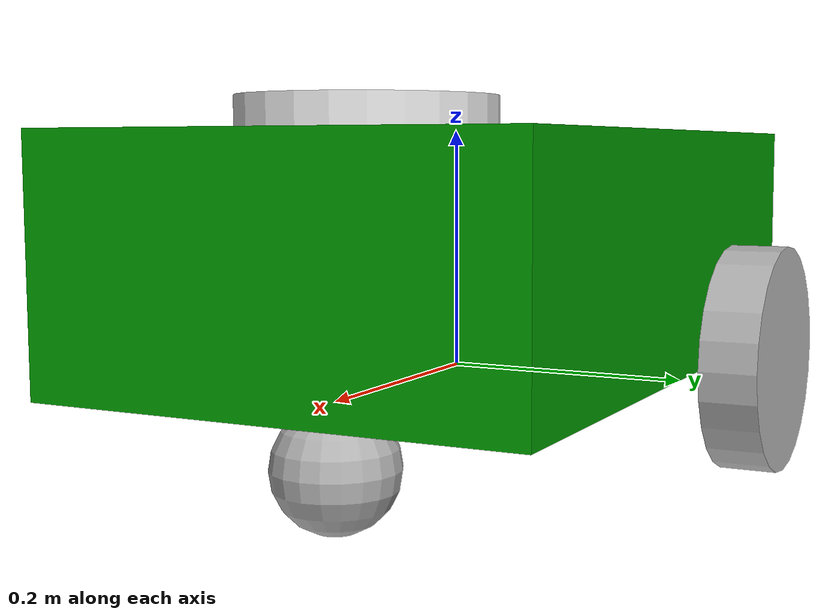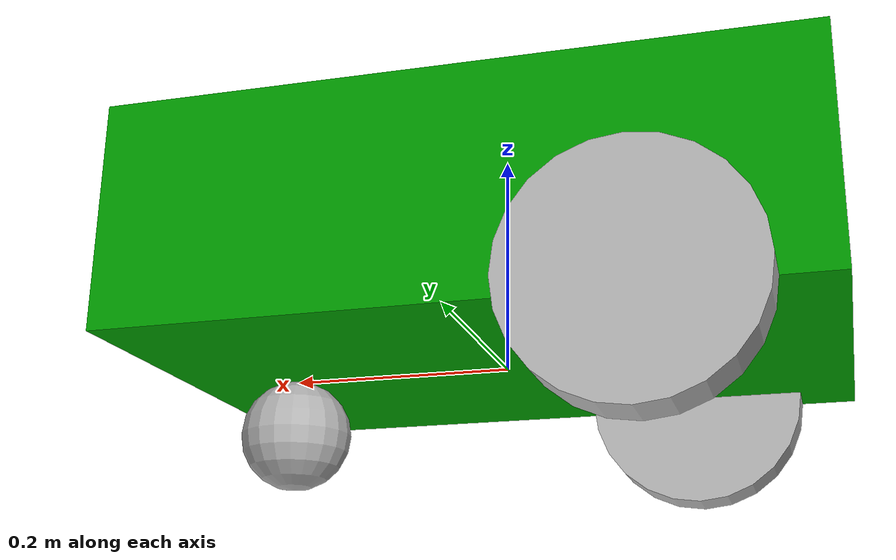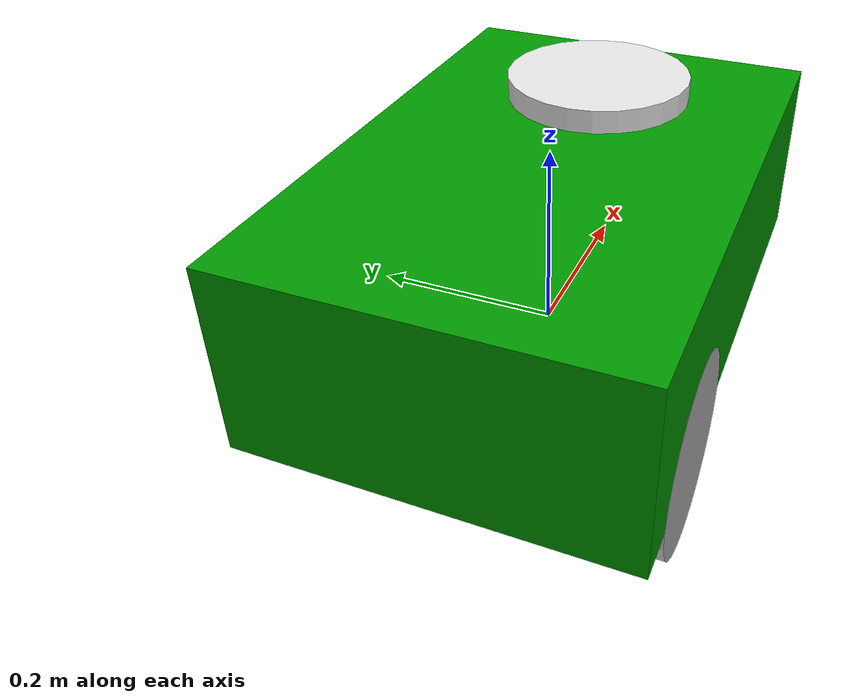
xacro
<?xml version="1.0"?>
<robot name="my_robot">

  <material name="green">
    <color rgba="0 0.6 0 1"/>
  </material>

  <material name="white">
    <color rgba="0.9 0.9 0.9 1"/>
  </material>

  <material name="gray">
    <color rgba="0.7 0.7 0.7 1"/>
  </material>

  <link name="base_link">
    <visual>
      <geometry>
        <box size="0.6 0.4 0.2"/>
      </geometry>
      <origin xyz="0 0 0.1" rpy="0 0 0"/>
      <material name="green"/>
    </visual>
  </link>

  <link name="lidar">
    <visual>
      <geometry>
        <cylinder radius="0.1" length="0.05"/>
      </geometry>
      <origin xyz="0 0 0" rpy="0 0 0"/>
      <material name="white"/>
    </visual>
  </link>

  <joint name="base_lidar_joint" type="fixed">
    <parent link="base_link"/>
    <child link="lidar"/>
    <origin xyz="0.15 0 0.2" rpy="0 0 0"/>
  </joint>

  <link name="left_wheel">
    <visual>
      <geometry>
        <cylinder radius="0.1" length="0.05"/>
      </geometry>
      <origin xyz="0 0 0.025" rpy="0 0 0"/>
      <material name="gray"/>
    </visual>
  </link>

  <joint name="base_left_wheel_joint" type="continuous">
    <parent link="base_link"/>
    <child link="left_wheel"/>
    <origin xyz="-0.15 0.2 0" rpy="-1.57 0 0"/>
    <axis xyz="0 0 1"/>
  </joint>

  <link name="right_wheel">
    <visual>
      <geometry>
        <cylinder radius="0.1" length="0.05"/>
      </geometry>
      <origin xyz="0 0 0.025" rpy="0 0 0"/>
      <material name="gray"/>
    </visual>
  </link>

  <joint name="base_right_wheel_joint" type="continuous">
    <parent link="base_link"/>
    <child link="right_wheel"/>
    <origin xyz="-0.15 -0.2 0" rpy="-1.57 0 0"/>
    <axis xyz="0 0 1"/>
  </joint>

  <link name="caster_wheel">
    <visual>
      <geometry>
        <sphere radius="0.05"/>
      </geometry>
      <origin xyz="0 0 0" rpy="0 0 0"/>
      <material name="gray"/>
    </visual>
  </link>

  <joint name="base_caster_wheel_joint" type="fixed">
    <parent link="base_link"/>
    <child link="caster_wheel"/>
    <origin xyz="0.2 0 -0.05" rpy="0 0 0"/>
  </joint>

</robot>
